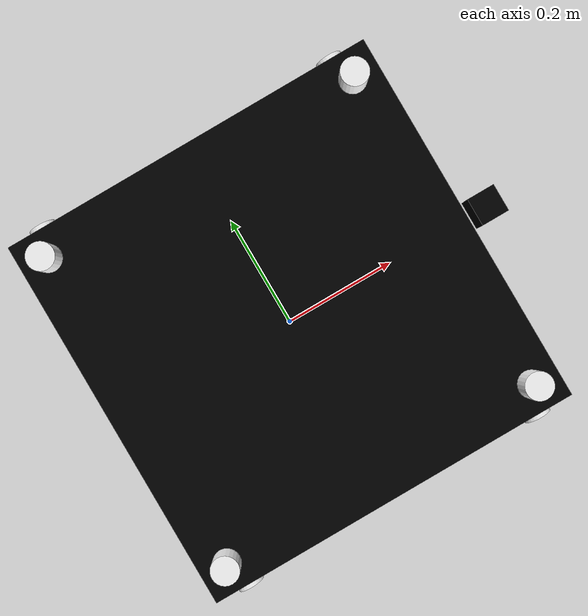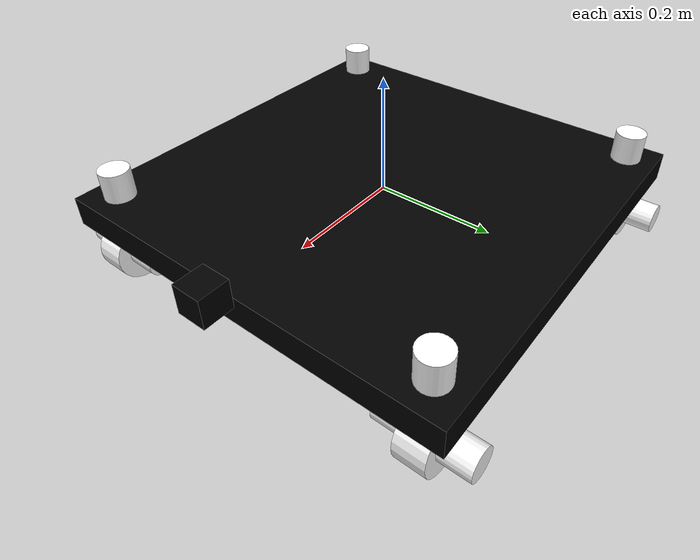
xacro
<?xml version="1.0"?>

<robot xmlns:xacro="http:/www.ros.org/wiki/xacro" name="robot">

<!-- base link -->
<xacro:property name="base_link_l" value = "0.7"/>
<xacro:property name ="base_link_h" value= "0.05"/>

<!-- motor -->
<xacro:property name="motor_r" value="0.025"/>
<xacro:property name="motor_h" value= "0.15"/>

<!-- motor1 location -->
<xacro:property name="motor_x" value = "0.3"/>
<xacro:property name="motor_y" value = "0.3"/>
<xacro:property name="motor_z" value = "0"/>

<!-- motor2 location -->
<xacro:property name = "motor2_x" value = "0"/>
<xacro:property name = "motor2_y" value = "0"/>
<xacro:property name = "motor2_z" value ="-0.075"/>

<!-- wheel -->
<xacro:property name = "wheel_r" value = "0.05"/>
<xacro:property name = "wheel_h" value = "0.05" />

<!-- wheel location -->
<xacro:property name="wheel_x" value ="0.0025"/>
<xacro:property name="wheel_y" value ="0.0025"/>
<xacro:property name="wheel_z" value ="0"/>

<!-- moment of inertia -->
<xacro:property name = "base_mass" value = "5"/>
<xacro:property name = "motor_mass" value = "0.5"/>
<xacro:property name = "wheel_mass" value = "0.6"/>
<xacro:property name = "bixx" value = "0.0513"/>
<xacro:property name = "biyy" value = "0.0513"/>
<xacro:property name = "bizz" value = "0.102"/>
<xacro:property name =  "mixx" value = "0.0005"/>
<xacro:property name ="miyy" value ="0.0005"/>
<xacro:property name = "mizz" value = "0.00075"/>
<xacro:property name = "wixx" value = "0.00102"/>
<xacro:property name ="wiyy" value ="0.00102"/>
<xacro:property name = "wizz" value = "0.00016"/>

<!-- effort -->
<xacro:property name= "effort" value = "5"/>
<xacro:property name="velocity" value = "50"/>

<!-- box -->
<xacro:property name = "box" value = "0.05"/>
<xacro:property name = "box_x" value = "0.38"/>
<xacro:property name = "box_y" value = "0"/>
<xacro:property name = "box_z" value = "0.04"/>
<link name="dummy">

</link>
<joint name="dummy_base" type = "fixed">
	<parent link="dummy"/>
	<child link = "base_link"/>

</joint>
<link name="laser_scan">
	<visual>
		<origin xyz = "0 0 0" rpy = "0 0 0"/>
		<geometry>
			<box size = "${box} ${box} ${box}"/>
		</geometry>
		<material name = "white">
			<color rgba = "0.0 0.0 0.0 1.0"/>
		</material>
	</visual>
	<collision>
		<origin xyz = "0 0 0" rpy = "0 0 0"/>
		<geometry>
			<box size = "${box} ${box} ${box}"/>
		</geometry>
		<material name = "white">
			<color rgba = "0.0 0.0 0.0 1.0"/>
		</material>
	</collision>
</link>

<link name="base_link">
	<visual>
		<origin xyz="0 0 0" rpy="0 0 0"/>
		<geometry>
			<box size="${base_link_l} ${base_link_l} ${base_link_h}"/>
		</geometry>
		<material name = "black">
			<color rgba= "0.0 0.0 0.0 1.0"/>
		</material>
	</visual>
	<collision>
		<origin xyz="0 0 0" rpy="0 0 0"/>
		<geometry>
			<box size="${base_link_l} ${base_link_l} ${base_link_h}"/>
		</geometry>
		<material name = "black">
			<color rgba= "0.0 0.0 0.0 1.0"/>
		</material>
	</collision>
	<inertial>
		<mass value = "${base_mass}"/>
		<origin value ="0 0 0"/>
		<inertia ixx = "${bixx}" ixy="0" ixz ="0" iyy = "${biyy}" iyz ="0" izz = "${bizz}"/>
	</inertial>

</link>
<joint name = "base_link_box" type = "fixed">
	<origin xyz = "${box_x} ${box_y} ${box_z}"/>
	<parent link ="base_link"/>
	<child link = "laser_scan"/>

</joint>
<link name = "b1m1">
	<visual>
		<origin xyz ="0 0 0" rpy = "0 0 0"/>
		<geometry>
			<cylinder length="${motor_h}" radius = "${motor_r}"/>
		</geometry>
		<material name= "white">
			<color rgba="1.0 1.0 1.0 1.0"/>
		</material>
	</visual>
	<collision>
		<origin xyz ="0 0 0" rpy = "0 0 0"/>
		<geometry>
			<cylinder length="${motor_h}" radius = "${motor_r}"/>
		</geometry>
		<surface>
          	<friction>
            		<ode>
              			<mu>200.0</mu>
              			<mu2>100.0</mu2>
            		</ode>
          	</friction>
        		</surface>
		<material name= "white">
			<color rgba="1.0 1.0 1.0 1.0"/>
		</material>
	</collision>
	<inertial>
		<mass value = "${motor_mass}"/>
		<origin value ="0 0 0"/>
		<inertia ixx = "${mixx}" ixy="0" ixz ="0" iyy = "${miyy}" iyz ="0" izz = "${mizz}"/>
	</inertial>
</link>
<joint name = "base_link_b1m1" type = "continuous">
	<origin xyz = "${motor_x} ${motor_y} ${motor_z}" rpy = "0 0 1.57"/>
	<parent link = "base_link"/>
	<axis xyz = "0 0 1"/>
	<child link = "b1m1"/>
	<limit effort = "${effort}" velocity = "${velocity}" />
</joint>
<link name = "b1m2">
	<visual>
		<origin xyz="0 0 0" rpy = "0 0 0"/>
		<geometry>
			<cylinder length="${motor_h}" radius = "${motor_r}"/>
		</geometry>
		<material name= "white">
			<color rgba="1.0 1.0 1.0 1.0"/>
		</material>
	</visual>
	<collision>
		<origin xyz="0 0 0" rpy = "0 0 0"/>
		<geometry>
			<cylinder length="${motor_h}" radius = "${motor_r}"/>
		</geometry>
		<material name= "white">
			<color rgba="1.0 1.0 1.0 1.0"/>
		</material>
	</collision>
	<inertial>
		<mass value = "${motor_mass}"/>
		<origin xyz = "0 0 0"/>
		<inertia ixx="${mixx}" ixy = "0" ixz = "0" iyy = "${miyy}" iyz = "0" izz = "${mizz}"/>
	</inertial>
</link>
<joint name="b1m1_b1m2" type = "fixed">
	<origin xyz = "${motor2_x} ${motor2_y} ${motor2_z}" rpy = "0 1.57 0"/>
	<parent link = "b1m1"/>
	<child link = "b1m2"/>
</joint>
<link name="b1wheel">
	<visual>
		<origin xyz="0 0 0" rpy = "0 0 0"/>
		<geometry>
			<cylinder length = "${wheel_h}" radius ="${wheel_r}" />
		</geometry>
		<material name= "white">
			<color rgba="1.0 1.0 1.0 1.0"/>
		</material>
	</visual>
	<collision>
		<origin xyz="0 0 0" rpy = "0 0 0"/>
		<geometry>
			<cylinder length = "${wheel_h}" radius ="${wheel_r}" />
		</geometry>
		<surface>
          	<friction>
            		<ode>
              			<mu>200.0</mu>
              			<mu2>100.0</mu2>
            		</ode>
          	</friction>
        		</surface>
		<material name= "white">
			<color rgba="1.0 1.0 1.0 1.0"/>
		</material>
	</collision>
	<inertial>
		<mass value = "${wheel_mass}"/>
		<origin xyz = "0 0 0"/>
		<inertia ixx="${wixx}" ixy = "0" ixz = "0" iyy = "${wiyy}" iyz = "0" izz = "${wizz}"/>
	</inertial>
</link>
<joint name = "b1m2_b1wheel" type = "continuous">
	<origin xyz = "${wheel_x} ${wheel_y} ${wheel_z}" rpy = "0 0 1.57"/>
	<parent link="b1m2"/>
	<child link="b1wheel"/>
	<axis xyz="0 0 1"/>
	<limit effort="${effort}" velocity ="${velocity}" />
</joint>
<!-- end b1 -->

<link name = "b2m1">
	<visual>
		<origin xyz ="0 0 0" rpy = "0 0 0"/>
		<geometry>
			<cylinder length="${motor_h}" radius = "${motor_r}"/>
		</geometry>
		<material name= "white">
			<color rgba="1.0 1.0 1.0 1.0"/>
		</material>
	</visual>
	<collision>
		<origin xyz ="0 0 0" rpy = "0 0 0"/>
		<geometry>
			<cylinder length="${motor_h}" radius = "${motor_r}"/>
		</geometry>
		<surface>
		<friction>
            		<ode>
              			<mu>200.0</mu>
              			<mu2>100.0</mu2>
            		</ode>
          	</friction>
        		</surface>
		<material name= "white">
			<color rgba="1.0 1.0 1.0 1.0"/>
		</material>
	</collision>
	<inertial>
		<mass value = "${motor_mass}"/>
		<origin value ="0 0 0"/>
		<inertia ixx = "${mixx}" ixy="0" ixz ="0" iyy = "${miyy}" iyz ="0" izz = "${mizz}"/>
	</inertial>
</link>
<joint name = "base_link_b2m1" type = "continuous">
	<origin xyz = "${motor_x} ${-motor_y} ${motor_z}" rpy = "0 0 1.57"/>
	<parent link = "base_link"/>
	<axis xyz = "0 0 1"/>
	<child link = "b2m1"/>
	<limit effort = "${effort}" velocity = "${velocity}" />
</joint>
<link name = "b2m2">
	<visual>
		<origin xyz="0 0 0" rpy = "0 0 0"/>
		<geometry>
			<cylinder length="${motor_h}" radius = "${motor_r}"/>
		</geometry>
		<material name= "white">
			<color rgba="1.0 1.0 1.0 1.0"/>
		</material>
	</visual>
	<collision>
		<origin xyz="0 0 0" rpy = "0 0 0"/>
		<geometry>
			<cylinder length="${motor_h}" radius = "${motor_r}"/>
		</geometry>
		<material name= "white">
			<color rgba="1.0 1.0 1.0 1.0"/>
		</material>
	</collision>
	<inertial>
		<mass value = "${motor_mass}"/>
		<origin xyz = "0 0 0"/>
		<inertia ixx="${mixx}" ixy = "0" ixz = "0" iyy = "${miyy}" iyz = "0" izz = "${mizz}"/>
	</inertial>
</link>
<joint name="b2m1_b2m2" type = "fixed">
	<origin xyz = "${motor2_x} ${motor2_y} ${motor2_z}" rpy = "0 1.57 0"/>
	<parent link = "b2m1"/>
	<child link = "b2m2"/>
</joint>
<link name="b2wheel">
	<visual>
		<origin xyz="0 0 0" rpy = "0 0 0"/>
		<geometry>
			<cylinder length = "${wheel_h}" radius ="${wheel_r}" />
		</geometry>
		<material name= "white">
			<color rgba="1.0 1.0 1.0 1.0"/>
		</material>
	</visual>
	<collision>
		<origin xyz="0 0 0" rpy = "0 0 0"/>
		<geometry>
			<cylinder length = "${wheel_h}" radius ="${wheel_r}" />
		</geometry>
		<surface>
          	<friction>
            		<ode>
              			<mu>200.0</mu>
              			<mu2>100.0</mu2>
            		</ode>
          	</friction>
        		</surface>
		<material name= "white">
			<color rgba="1.0 1.0 1.0 1.0"/>
		</material>
	</collision>
	<inertial>
		<mass value = "${wheel_mass}"/>
		<origin xyz = "0 0 0"/>
		<inertia ixx="${wixx}" ixy = "0" ixz = "0" iyy = "${wiyy}" iyz = "0" izz = "${wizz}"/>
	</inertial>
</link>
<joint name = "b2m2_b2wheel" type = "continuous">
	<origin xyz = "${wheel_x} ${wheel_y} ${wheel_z}" rpy = "0 0 1.57"/>
	<parent link="b2m2"/>
	<child link="b2wheel"/>
	<axis xyz="0 0 1"/>
	<limit effort="${effort}" velocity ="${velocity}" />
</joint>

<!-- end b2 -->

<link name = "f1m1">
	<visual>
		<origin xyz ="0 0 0" rpy = "0 0 0"/>
		<geometry>
			<cylinder length="${motor_h}" radius = "${motor_r}"/>
		</geometry>
		<material name= "white">
			<color rgba="1.0 1.0 1.0 1.0"/>
		</material>
	</visual>
	<collision>
		<origin xyz ="0 0 0" rpy = "0 0 0"/>
		<geometry>
			<cylinder length="${motor_h}" radius = "${motor_r}"/>
		</geometry>
		<surface>
          	<friction>
            		<ode>
              			<mu>200.0</mu>
              			<mu2>100.0</mu2>
            		</ode>
          	</friction>
        		</surface>
		<material name= "white">
			<color rgba="1.0 1.0 1.0 1.0"/>
		</material>
	</collision>
	<inertial>
		<mass value = "${motor_mass}"/>
		<origin value ="0 0 0"/>
		<inertia ixx = "${mixx}" ixy="0" ixz ="0" iyy = "${miyy}" iyz ="0" izz = "${mizz}"/>
	</inertial>
</link>
<joint name = "base_link_f1m1" type = "continuous">
	<origin xyz = "${-motor_x} ${-motor_y} ${motor_z}" rpy = "0 0 1.57"/>
	<parent link = "base_link"/>
	<axis xyz = "0 0 1"/>
	<child link = "f1m1"/>
	<limit effort = "${effort}" velocity = "${velocity}" />
</joint>
<link name = "f1m2">
	<visual>
		<origin xyz="0 0 0" rpy = "0 0 0"/>
		<geometry>
			<cylinder length="${motor_h}" radius = "${motor_r}"/>
		</geometry>
		<material name= "white">
			<color rgba="1.0 1.0 1.0 1.0"/>
		</material>
	</visual>
	<collision>
		<origin xyz="0 0 0" rpy = "0 0 0"/>
		<geometry>
			<cylinder length="${motor_h}" radius = "${motor_r}"/>
		</geometry>
		<material name= "white">
			<color rgba="1.0 1.0 1.0 1.0"/>
		</material>
	</collision>
	<inertial>
		<mass value = "${motor_mass}"/>
		<origin xyz = "0 0 0"/>
		<inertia ixx="${mixx}" ixy = "0" ixz = "0" iyy = "${miyy}" iyz = "0" izz = "${mizz}"/>
	</inertial>
</link>
<joint name="f1m1_f1m2" type = "fixed">
	<origin xyz = "${motor2_x} ${motor2_y} ${motor2_z}" rpy = "0 1.57 0"/>
	<parent link = "f1m1"/>
	<child link = "f1m2"/>
</joint>
<link name="f1wheel">
	<visual>
		<origin xyz="0 0 0" rpy = "0 0 0"/>
		<geometry>
			<cylinder length = "${wheel_h}" radius ="${wheel_r}" />
		</geometry>
		<material name= "white">
			<color rgba="1.0 1.0 1.0 1.0"/>
		</material>
	</visual>
	<collision>
		<origin xyz="0 0 0" rpy = "0 0 0"/>
		<geometry>
			<cylinder length = "${wheel_h}" radius ="${wheel_r}" />
		</geometry>
		<surface>
          	<friction>
            		<ode>
              			<mu>200.0</mu>
              			<mu2>100.0</mu2>
            		</ode>
          	</friction>
        		</surface>
		<material name= "white">
			<color rgba="1.0 1.0 1.0 1.0"/>
		</material>
	</collision>
	<inertial>
		<mass value = "${wheel_mass}"/>
		<origin xyz = "0 0 0"/>
		<inertia ixx="${wixx}" ixy = "0" ixz = "0" iyy = "${wiyy}" iyz = "0" izz = "${wizz}"/>
	</inertial>
</link>
<joint name = "f1m2_f1wheel" type = "continuous">
	<origin xyz = "${wheel_x} ${wheel_y} ${-wheel_z}" rpy = "0 0 1.57"/>
	<parent link="f1m2"/>
	<child link="f1wheel"/>
	<axis xyz="0 0 1"/>
	<limit effort="${effort}" velocity ="${velocity}" />
</joint>
<!-- end f1 -->

<link name = "f2m1">
	<visual>
		<origin xyz ="0 0 0" rpy = "0 0 0"/>
		<geometry>
			<cylinder length="${motor_h}" radius = "${motor_r}"/>
		</geometry>
		<material name= "white">
			<color rgba="1.0 1.0 1.0 1.0"/>
		</material>
	</visual>
	<collision>
		<origin xyz ="0 0 0" rpy = "0 0 0"/>
		<geometry>
			<cylinder length="${motor_h}" radius = "${motor_r}"/>
		</geometry>
		<surface>
          	<friction>
            		<ode>
              			<mu>200.0</mu>
              			<mu2>100.0</mu2>
            		</ode>
          	</friction>
        		</surface>
		<material name= "white">
			<color rgba="1.0 1.0 1.0 1.0"/>
		</material>
	</collision>
	<inertial>
		<mass value = "${motor_mass}"/>
		<origin value ="0 0 0"/>
		<inertia ixx = "${mixx}" ixy="0" ixz ="0" iyy = "${miyy}" iyz ="0" izz = "${mizz}"/>
	</inertial>
</link>
<joint name = "base_link_f2m1" type = "continuous">
	<origin xyz = "${-motor_x} ${motor_y} ${motor_z}" rpy = "0 0 1.57"/>
	<parent link = "base_link"/>
	<axis xyz = "0 0 1"/>
	<child link = "f2m1"/>
	<limit effort = "${effort}" velocity = "${velocity}" />
</joint>
<link name = "f2m2">
	<visual>
		<origin xyz="0 0 0" rpy = "0 0 0"/>
		<geometry>
			<cylinder length="${motor_h}" radius = "${motor_r}"/>
		</geometry>
		<material name= "white">
			<color rgba="1.0 1.0 1.0 1.0"/>
		</material>
	</visual>
	<collision>
		<origin xyz="0 0 0" rpy = "0 0 0"/>
		<geometry>
			<cylinder length="${motor_h}" radius = "${motor_r}"/>
		</geometry>
		<material name= "white">
			<color rgba="1.0 1.0 1.0 1.0"/>
		</material>
	</collision>
	<inertial>
		<mass value = "${motor_mass}"/>
		<origin xyz = "0 0 0"/>
		<inertia ixx="${mixx}" ixy = "0" ixz = "0" iyy = "${miyy}" iyz = "0" izz = "${mizz}"/>
	</inertial>
</link>
<joint name="f2m1_f2m2" type = "fixed">
	<origin xyz = "${motor2_x} ${motor2_y} ${motor2_z}" rpy = "0 1.57 0"/>
	<parent link = "f2m1"/>
	<child link = "f2m2"/>
</joint>
<link name="f2wheel">
	<visual>
		<origin xyz="0 0 0" rpy = "0 0 0"/>
		<geometry>
			<cylinder length = "${wheel_h}" radius ="${wheel_r}" />
		</geometry>
		<material name= "white">
			<color rgba="1.0 1.0 1.0 1.0"/>
		</material>
	</visual>
	<collision>
		<origin xyz="0 0 0" rpy = "0 0 0"/>
		<geometry>
			<cylinder length = "${wheel_h}" radius ="${wheel_r}" />
		</geometry>
		<surface>
          	<friction>
            		<ode>
              			<mu>200.0</mu>
              			<mu2>100.0</mu2>
            		</ode>
          	</friction>
        		</surface>
		<material name= "white">
			<color rgba="1.0 1.0 1.0 1.0"/>
		</material>
	</collision>
	<inertial>
		<mass value = "${wheel_mass}"/>
		<origin xyz = "0 0 0"/>
		<inertia ixx="${wixx}" ixy = "0" ixz = "0" iyy = "${wiyy}" iyz = "0" izz = "${wizz}"/>
	</inertial>
</link>
<joint name = "f2m2_f2wheel" type = "continuous">
	<origin xyz = "${wheel_x} ${wheel_y} ${-wheel_z}" rpy = "0 0 1.57"/>
	<parent link="f2m2"/>
	<child link="f2wheel"/>
	<axis xyz="0 0 1"/>
	<limit effort="${effort}" velocity ="${velocity}" />
</joint>

<gazebo reference = "laser_scan">
	<material>Gazebo/Blue</material>
	<trunGravityOff>false</trunGravityOff>
	<sensor type = "ray" name ="laser_scan_sensor">
		<pose> 0 ${box/2} 0 0 0 0</pose>
		<visualize>true</visualize>
		<update_rate>10.0</update_rate>
		<ray>
			<scan>
				<horizontal>
					<sample>1000</sample>
					<resolution>1</resolution>
					<min_angle>-1.57</min_angle>
					<max_angle>1.57</max_angle>
				</horizontal>
			</scan>
			<range>
				<min>0.1</min> <!-- minimum scan-->
				<max>10</max><!--maximum scan-->
				<resolution>1</resolution>
			</range>
		</ray>
		<plugin name ="laser_scanner" filename="libgazebo_ros_laser.so">
			<topicName>/scan</topicName>
			<frameName>laser_scan</frameName>
		</plugin>
	</sensor>
</gazebo>

<!-- end f1 -->
<transmission name = "b1t1">
	<type>transmission_interface/SimpleTransmission</type>
	<joint name = "base_link_b1m1">
		<hardwareInterface>hardware_interface/EffortJointInterface</hardwareInterface>
	</joint>
	<actuator name= "motor1">
		<hardwareInterface>hardware_interface/EffortJointInterface</hardwareInterface>
      		<mechanicalReduction>1</mechanicalReduction>
	</actuator>
</transmission>
<transmission name = "b1t2">
	<type>transmission_interface/SimpleTransmission</type>
	<joint name = "b1m2_b1wheel">
		<hardwareInterface>hardware_interface/VelocityJointInterface</hardwareInterface>
	</joint>
	<actuator name= "motor2">
      		<mechanicalReduction>1</mechanicalReduction>
	</actuator>
</transmission>
<transmission name = "b2t1">
	<type>transmission_interface/SimpleTransmission</type>
	<joint name = "base_link_b2m1">
		<hardwareInterface>hardware_interface/EffortJointInterface</hardwareInterface>
	</joint>
	<actuator name= "motor3">
		<hardwareInterface>hardware_interface/EffortJointInterface</hardwareInterface>
      		<mechanicalReduction>1</mechanicalReduction>
	</actuator>
</transmission>
<transmission name = "b2t2">
	<type>transmission_interface/SimpleTransmission</type>
	<joint name = "b2m2_b2wheel">
		<hardwareInterface>hardware_interface/VelocityJointInterface</hardwareInterface>
	</joint>
	<actuator name= "motor4">
      		<mechanicalReduction>1</mechanicalReduction>
	</actuator>
</transmission>
<transmission name = "f1t1">
	<type>transmission_interface/SimpleTransmission</type>
	<joint name = "base_link_f1m1">
		<hardwareInterface>hardware_interface/EffortJointInterface</hardwareInterface>
	</joint>
	<actuator name= "motor5">
		<hardwareInterface>hardware_interface/EffortJointInterface</hardwareInterface>
      		<mechanicalReduction>1</mechanicalReduction>
	</actuator>
</transmission>
<transmission name = "f1t2">
	<type>transmission_interface/SimpleTransmission</type>
	<joint name = "f1m2_f1wheel">
		<hardwareInterface>hardware_interface/VelocityJointInterface</hardwareInterface>
	</joint>
	<actuator name= "motor6">
      		<mechanicalReduction>1</mechanicalReduction>
      	</actuator>
</transmission>
<transmission name = "f2t1">
	<type>transmission_interface/SimpleTransmission</type>
	<joint name = "base_link_f2m1">
		<hardwareInterface>hardware_interface/EffortJointInterface</hardwareInterface>
	</joint>
	<actuator name= "motor7">
		<hardwareInterface>hardware_interface/EffortJointInterface</hardwareInterface>
      		<mechanicalReduction>1</mechanicalReduction>
	</actuator>
</transmission>
<transmission name = "f2t2">
	<type>transmission_interface/SimpleTransmission</type>
	<joint name = "f2m2_f2wheel">
		<hardwareInterface>hardware_interface/VelocityJointInterface</hardwareInterface>
	</joint>
	<actuator name= "motor8">
      		<mechanicalReduction>1</mechanicalReduction>
	</actuator>
</transmission>

<gazebo>
    <plugin name="gazebo_ros_control" filename="libgazebo_ros_control.so">
      <robotNamespace>/swerve</robotNamespace>
      <robotSimType>gazebo_ros_control/DefaultRobotHWSim</robotSimType>
    </plugin>
</gazebo>

</robot>
